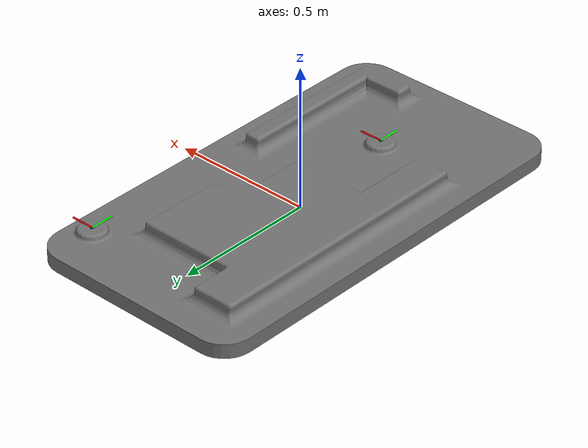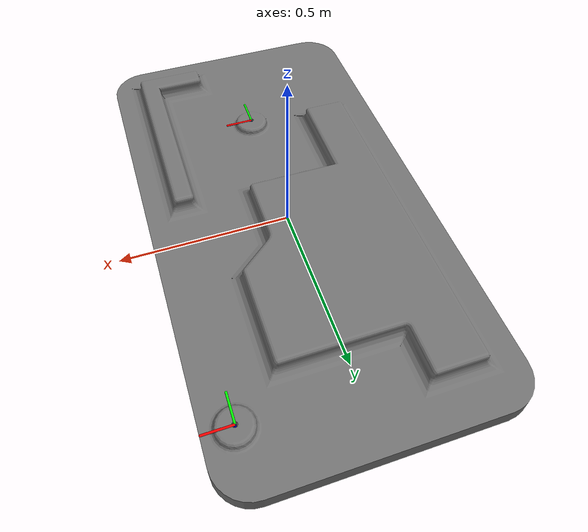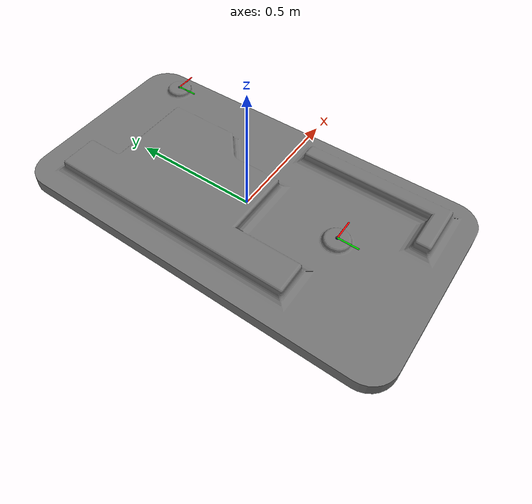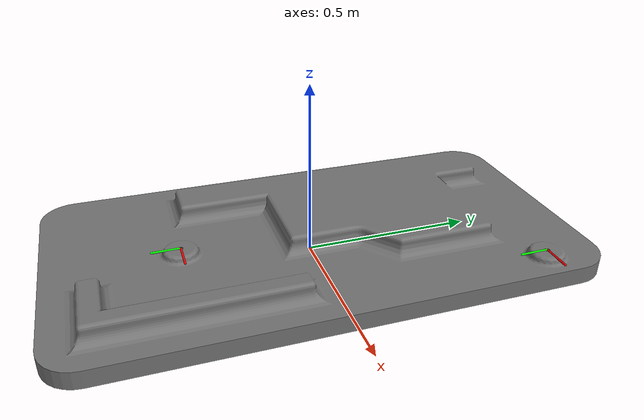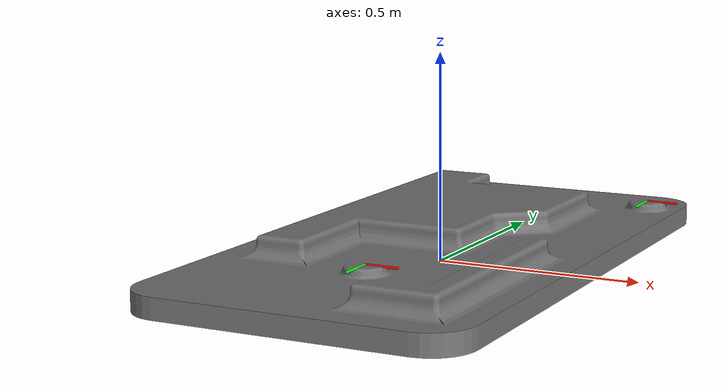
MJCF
<mujoco model="aluminium_plate">
  <compiler angle="radian"/>
  <option timestep="0.01"/>

  <visual>
    <headlight diffuse="0.6 0.6 0.6" ambient="0.1 0.1 0.1" specular="0 0 0"/>
    <rgba haze="0.15 0.25 0.35 1"/>
    <global azimuth="120" elevation="-20"/>
  </visual>

  <asset>
    <mesh name="aluminium_plate_mesh" file="aluminium_plate.obj"/>
  </asset>

  <default>
    <geom condim="3" friction="1 0.5 0.01" solref="0.02 1" solimp="0.9 0.95 0.001"/>
  </default>

  <worldbody>
    <body name="aluminium_plate" pos="0 0 0">

      <geom type="mesh" mesh="aluminium_plate_mesh" rgba="0.45 0.45 0.45 1" contype="0" conaffinity="0" group="0"/>
      <!-- Base plate -->
      <geom name="base_plate" type="box" size="0.4 0.75 0.025" pos="0 0 0.025" rgba="0.8 0.2 0.2 1" contype="1" conaffinity="1" group="3"/>

      <!-- right top cube -->
      <geom name="right_top_cube" type="box" size="0.0755 0.485 0.025" pos="-0.226 0.141 0.075" rgba="0.2 0.8 0.2 1" contype="1" conaffinity="1" group="3"/>

      <!-- right middle cube -->
      <geom name="right_middle_cube" type="box" size="0.1205 0.2835 0.025" pos="-0.03 0.202 0.075" rgba="0.2 0.8 0.2 1" contype="1" conaffinity="1" group="3"/>

      <!-- right bottom cube -->
      <geom name="right_bottom_cube" type="box" size="0.051 0.2835 0.025" pos="0.141 0.202 0.075" rgba="0.2 0.8 0.2 1" contype="1" conaffinity="1" group="3"/>

      <!-- lower bottom cube -->
      <geom name="lower_bottom_cube" type="box" size="0.0295 0.285 0.025" pos="0.284 -0.367 0.075" rgba="0.2 0.8 0.2 1" contype="1" conaffinity="1" group="3"/>

      <!-- lower top cube -->
      <geom name="lower_top_cube" type="box" size="0.0705 0.0295 0.025" pos="0.184 -0.622 0.075" rgba="0.2 0.8 0.2 1" contype="1" conaffinity="1" group="3"/>

      <!-- left cylinder -->
      <geom name="left_cylinder" type="cylinder" size="0.05 0.01" pos="0 -0.373 0.06" rgba="0.2 0.8 0.2 1" contype="1" conaffinity="1" group="3"/>

      <!-- right cylinder -->
      <geom name="right_cylinder" type="cylinder" size="0.05 0.01" pos="0.317 0.583 0.06" rgba="0.2 0.8 0.2 1" contype="1" conaffinity="1" group="3"/>

      <!-- Definition of the sites -->
      <!-- center of the piece -->
      <site name="mount_plate_site" pos="0.0 0.0 0.0" size="0.005" rgba="1 0 0 1"/>

      <!-- Hole 1 -->
      <body name="hole_1_frame_body" pos="0 -0.373 0.07" quat="0 1 0 0">
        <geom type="capsule" fromto="0 0 0 0.08 0 0" rgba="1 0 0 1" size="0.003" contype="0" conaffinity="0"/>
        <geom type="capsule" fromto="0 0 0 0 0.08 0" rgba="0 1 0 1" size="0.003" contype="0" conaffinity="0"/>
        <geom type="capsule" fromto="0 0 0 0 0 0.08" rgba="0 0 1 1" size="0.003" contype="0" conaffinity="0"/>
      </body>

      <!-- Hole 2 -->
      <body name="hole_2_frame_body" pos="0.317 0.583 0.07" quat="0 1 0 0">
        <geom type="capsule" fromto="0 0 0 0.08 0 0" rgba="1 0 0 1" size="0.003" contype="0" conaffinity="0"/>
        <geom type="capsule" fromto="0 0 0 0 0.08 0" rgba="0 1 0 1" size="0.003" contype="0" conaffinity="0"/>
        <geom type="capsule" fromto="0 0 0 0 0 0.08" rgba="0 0 1 1" size="0.003" contype="0" conaffinity="0"/>
      </body>

    </body>
  </worldbody>
</mujoco>
